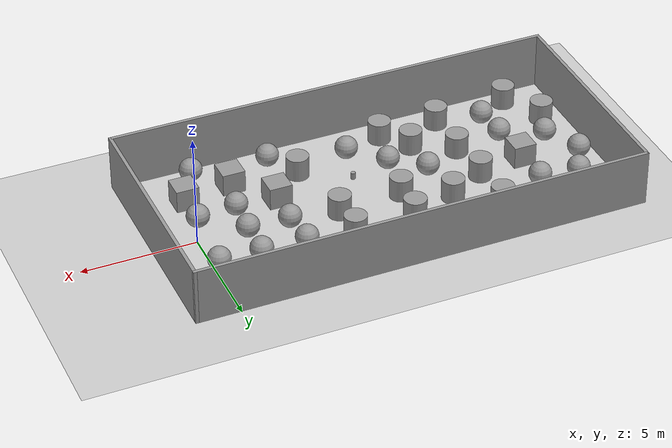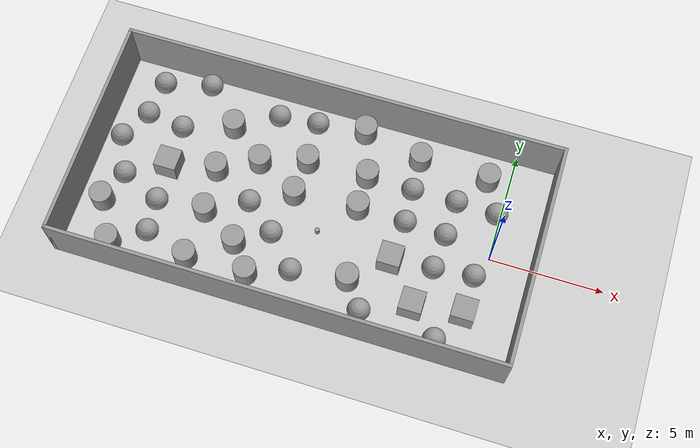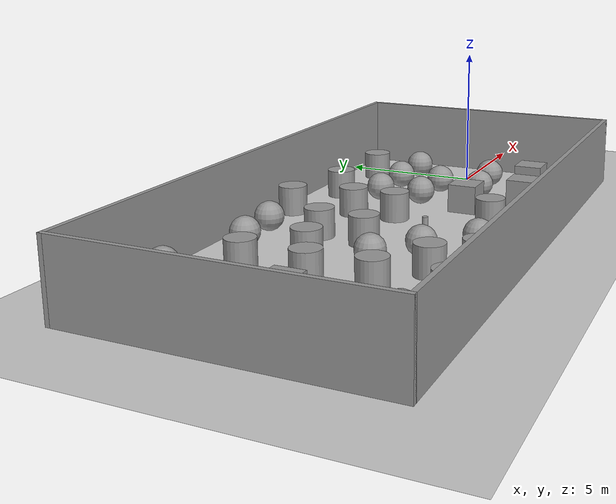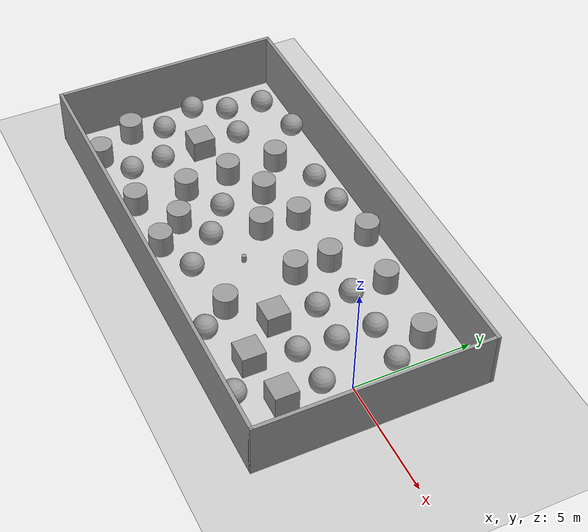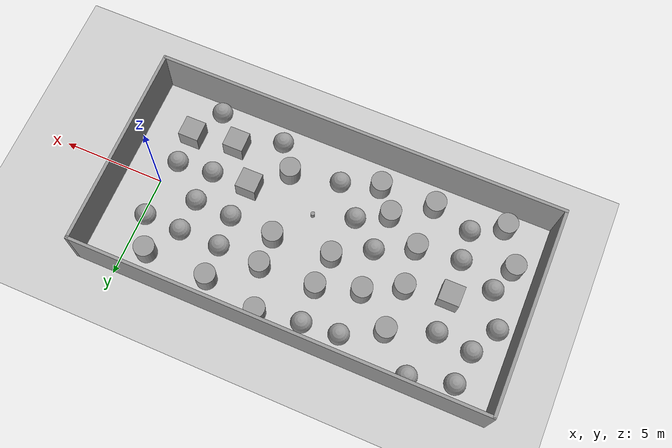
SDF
<sdf version="1.7">
 <world name="default">
  <light name="sun" type="directional">
   <pose>0 0 10 0 -0 0</pose>
   <diffuse>0.8 0.8 0.8 1</diffuse>
   <specular>0.2 0.2 0.2 1</specular>
   <attenuation>
    <range>1000</range>
    <constant>0.9</constant>
    <linear>0.01</linear>
    <quadratic>0.001</quadratic>
   </attenuation>
   <direction>-0.5 0.1 -0.9</direction>
   <spot><inner_angle>0</inner_angle><outer_angle>0</outer_angle><falloff>0</falloff></spot>
  </light>
  <model name="ground_plane">
   <static>1</static>
   <link name="link">
    <collision name="collision">
     <geometry><plane><normal>0 0 1</normal><size>100 100</size></plane></geometry>
     <surface><friction><ode><mu>100</mu><mu2>50</mu2></ode></friction></surface>
    </collision>
    <visual name="visual">
     <cast_shadows>0</cast_shadows>
     <geometry><plane><normal>0 0 1</normal><size>100 100</size></plane></geometry>
     <material>
      <script><uri>file://media/materials/scripts/gazebo.material</uri><name>Gazebo/Grey</name></script>
     </material>
    </visual>
   </link>
  </model>
  <gravity>0 0 -9.8</gravity>
  <magnetic_field>6e-06 2.3e-05 -4.2e-05</magnetic_field>
  <atmosphere type="adiabatic"/>
  <physics type="ode">
   <max_step_size>0.001</max_step_size>
   <real_time_factor>1</real_time_factor>
   <real_time_update_rate>1000</real_time_update_rate>
  </physics>
  <scene><ambient>0.4 0.4 0.4 1</ambient><background>0.7 0.7 0.7 1</background><shadows>1</shadows></scene>
  <audio><device>default</device></audio>
  <spherical_coordinates>
   <surface_model>EARTH_WGS84</surface_model>
   <latitude_deg>0</latitude_deg>
   <longitude_deg>0</longitude_deg>
   <elevation>0</elevation>
   <heading_deg>0</heading_deg>
  </spherical_coordinates>
  <model name="Untitled">
   <pose>-8.07686 -0.083661 0 0 -0 0</pose>
   <link name="Wall_10">
    <collision name="Wall_10_Collision">
     <geometry><box><size>20 0.15 2.5</size></box></geometry>
     <pose>0 0 1.25 0 -0 0</pose>
    </collision>
    <visual name="Wall_10_Visual">
     <pose>0 0 1.25 0 -0 0</pose>
     <geometry><box><size>20 0.15 2.5</size></box></geometry>
     <material>
      <script><uri>file://media/materials/scripts/gazebo.material</uri><name>Gazebo/Grey</name></script>
      <ambient>1 1 1 1</ambient>
     </material>
     <meta><layer>0</layer></meta>
    </visual>
    <pose>-0 4.925 0 0 -0 3.14159</pose>
   </link>
   <link name="Wall_7">
    <collision name="Wall_7_Collision">
     <geometry><box><size>10 0.15 2.5</size></box></geometry>
     <pose>0 0 1.25 0 -0 0</pose>
    </collision>
    <visual name="Wall_7_Visual">
     <pose>0 0 1.25 0 -0 0</pose>
     <geometry><box><size>10 0.15 2.5</size></box></geometry>
     <material>
      <script><uri>file://media/materials/scripts/gazebo.material</uri><name>Gazebo/Grey</name></script>
      <ambient>1 1 1 1</ambient>
     </material>
     <meta><layer>0</layer></meta>
    </visual>
    <pose>-9.925 -0 0 0 -0 -1.5708</pose>
   </link>
   <link name="Wall_8">
    <collision name="Wall_8_Collision">
     <geometry><box><size>20 0.15 2.5</size></box></geometry>
     <pose>0 0 1.25 0 -0 0</pose>
    </collision>
    <visual name="Wall_8_Visual">
     <pose>0 0 1.25 0 -0 0</pose>
     <geometry><box><size>20 0.15 2.5</size></box></geometry>
     <material>
      <script><uri>file://media/materials/scripts/gazebo.material</uri><name>Gazebo/Grey</name></script>
      <ambient>1 1 1 1</ambient>
     </material>
     <meta><layer>0</layer></meta>
    </visual>
    <pose>-0 -4.925 0 0 -0 0</pose>
   </link>
   <link name="Wall_9">
    <collision name="Wall_9_Collision">
     <geometry><box><size>10 0.15 2.5</size></box></geometry>
     <pose>0 0 1.25 0 -0 0</pose>
    </collision>
    <visual name="Wall_9_Visual">
     <pose>0 0 1.25 0 -0 0</pose>
     <geometry><box><size>10 0.15 2.5</size></box></geometry>
     <material>
      <script><uri>file://media/materials/scripts/gazebo.material</uri><name>Gazebo/Grey</name></script>
      <ambient>1 1 1 1</ambient>
     </material>
     <meta><layer>0</layer></meta>
    </visual>
    <pose>9.925 -0 0 0 -0 1.5708</pose>
   </link>
   <static>1</static>
  </model>
  <model name="unit_cylinder">
   <pose>-0.995491 3.50867 0.499994 -3e-06 -2e-06 0</pose>
   <link name="link">
    <inertial>
     <mass>1</mass>
     <inertia><ixx>0.145833</ixx><ixy>0</ixy><ixz>0</ixz><iyy>0.145833</iyy><iyz>0</iyz><izz>0.125</izz></inertia>
    </inertial>
    <collision name="collision">
     <geometry><cylinder><radius>0.5</radius><length>1</length></cylinder></geometry>
    </collision>
    <visual name="visual">
     <geometry><cylinder><radius>0.5</radius><length>1</length></cylinder></geometry>
     <material>
      <script><name>Gazebo/Grey</name><uri>file://media/materials/scripts/gazebo.material</uri></script>
     </material>
    </visual>
   </link>
  </model>
  <model name="unit_sphere">
   <pose>-2.0374 2.00215 0.5 0 -0 0</pose>
   <link name="link">
    <inertial>
     <mass>1</mass>
     <inertia><ixx>0.1</ixx><ixy>0</ixy><ixz>0</ixz><iyy>0.1</iyy><iyz>0</iyz><izz>0.1</izz></inertia>
    </inertial>
    <collision name="collision"><geometry><sphere><radius>0.5</radius></sphere></geometry></collision>
    <visual name="visual">
     <geometry><sphere><radius>0.5</radius></sphere></geometry>
     <material>
      <script><name>Gazebo/Grey</name><uri>file://media/materials/scripts/gazebo.material</uri></script>
     </material>
    </visual>
   </link>
  </model>
  <model name="unit_sphere_0">
   <pose>-0.222709 1.95057 0.5 0 -0 0</pose>
   <link name="link">
    <inertial>
     <mass>1</mass>
     <inertia><ixx>0.1</ixx><ixy>0</ixy><ixz>0</ixz><iyy>0.1</iyy><iyz>0</iyz><izz>0.1</izz></inertia>
    </inertial>
    <collision name="collision"><geometry><sphere><radius>0.5</radius></sphere></geometry></collision>
    <visual name="visual">
     <geometry><sphere><radius>0.5</radius></sphere></geometry>
     <material>
      <script><name>Gazebo/Grey</name><uri>file://media/materials/scripts/gazebo.material</uri></script>
     </material>
    </visual>
   </link>
  </model>
  <model name="unit_sphere_1">
   <pose>-2.08841 0.366388 0.5 0 -0 0</pose>
   <link name="link">
    <inertial>
     <mass>1</mass>
     <inertia><ixx>0.1</ixx><ixy>0</ixy><ixz>0</ixz><iyy>0.1</iyy><iyz>0</iyz><izz>0.1</izz></inertia>
    </inertial>
    <collision name="collision"><geometry><sphere><radius>0.5</radius></sphere></geometry></collision>
    <visual name="visual">
     <geometry><sphere><radius>0.5</radius></sphere></geometry>
     <material>
      <script><name>Gazebo/Grey</name><uri>file://media/materials/scripts/gazebo.material</uri></script>
     </material>
    </visual>
   </link>
  </model>
  <model name="unit_sphere_2">
   <pose>-0.451353 -1.08008 0.5 0 -0 0</pose>
   <link name="link">
    <inertial>
     <mass>1</mass>
     <inertia><ixx>0.1</ixx><ixy>0</ixy><ixz>0</ixz><iyy>0.1</iyy><iyz>0</iyz><izz>0.1</izz></inertia>
    </inertial>
    <collision name="collision"><geometry><sphere><radius>0.5</radius></sphere></geometry></collision>
    <visual name="visual">
     <geometry><sphere><radius>0.5</radius></sphere></geometry>
     <material>
      <script><name>Gazebo/Grey</name><uri>file://media/materials/scripts/gazebo.material</uri></script>
     </material>
    </visual>
   </link>
  </model>
  <model name="unit_sphere_3">
   <pose>-2.20209 -1.24084 0.5 0 -0 0</pose>
   <link name="link">
    <inertial>
     <mass>1</mass>
     <inertia><ixx>0.1</ixx><ixy>0</ixy><ixz>0</ixz><iyy>0.1</iyy><iyz>0</iyz><izz>0.1</izz></inertia>
    </inertial>
    <collision name="collision"><geometry><sphere><radius>0.5</radius></sphere></geometry></collision>
    <visual name="visual">
     <geometry><sphere><radius>0.5</radius></sphere></geometry>
     <material>
      <script><name>Gazebo/Grey</name><uri>file://media/materials/scripts/gazebo.material</uri></script>
     </material>
    </visual>
   </link>
  </model>
  <model name="unit_sphere_4">
   <pose>-3.91889 0.444341 0.5 0 -0 0</pose>
   <link name="link">
    <inertial>
     <mass>1</mass>
     <inertia><ixx>0.1</ixx><ixy>0</ixy><ixz>0</ixz><iyy>0.1</iyy><iyz>0</iyz><izz>0.1</izz></inertia>
    </inertial>
    <collision name="collision"><geometry><sphere><radius>0.5</radius></sphere></geometry></collision>
    <visual name="visual">
     <geometry><sphere><radius>0.5</radius></sphere></geometry>
     <material>
      <script><name>Gazebo/Grey</name><uri>file://media/materials/scripts/gazebo.material</uri></script>
     </material>
    </visual>
   </link>
  </model>
  <model name="unit_sphere_5">
   <pose>-4.02189 1.99881 0.5 0 -0 0</pose>
   <link name="link">
    <inertial>
     <mass>1</mass>
     <inertia><ixx>0.1</ixx><ixy>0</ixy><ixz>0</ixz><iyy>0.1</iyy><iyz>0</iyz><izz>0.1</izz></inertia>
    </inertial>
    <collision name="collision"><geometry><sphere><radius>0.5</radius></sphere></geometry></collision>
    <visual name="visual">
     <geometry><sphere><radius>0.5</radius></sphere></geometry>
     <material>
      <script><name>Gazebo/Grey</name><uri>file://media/materials/scripts/gazebo.material</uri></script>
     </material>
    </visual>
   </link>
  </model>
  <model name="unit_box">
   <pose>-4.06649 -1.35324 0.499995 -1e-05 -0 -0</pose>
   <link name="link">
    <inertial>
     <mass>1</mass>
     <inertia>
      <ixx>0.166667</ixx>
      <ixy>0</ixy>
      <ixz>0</ixz>
      <iyy>0.166667</iyy>
      <iyz>0</iyz>
      <izz>0.166667</izz>
     </inertia>
    </inertial>
    <collision name="collision"><geometry><box><size>1 1 1</size></box></geometry></collision>
    <visual name="visual">
     <geometry><box><size>1 1 1</size></box></geometry>
     <material>
      <script><name>Gazebo/Grey</name><uri>file://media/materials/scripts/gazebo.material</uri></script>
     </material>
    </visual>
   </link>
  </model>
  <model name="unit_box_0">
   <pose>-0.464439 -2.7308 0.499995 0 1e-05 0</pose>
   <link name="link">
    <inertial>
     <mass>1</mass>
     <inertia>
      <ixx>0.166667</ixx>
      <ixy>0</ixy>
      <ixz>0</ixz>
      <iyy>0.166667</iyy>
      <iyz>0</iyz>
      <izz>0.166667</izz>
     </inertia>
    </inertial>
    <collision name="collision"><geometry><box><size>1 1 1</size></box></geometry></collision>
    <visual name="visual">
     <geometry><box><size>1 1 1</size></box></geometry>
     <material>
      <script><name>Gazebo/Grey</name><uri>file://media/materials/scripts/gazebo.material</uri></script>
     </material>
    </visual>
   </link>
  </model>
  <model name="unit_box_1">
   <pose>-2.63966 -3.05397 0.499995 -1e-05 -0 -0</pose>
   <link name="link">
    <inertial>
     <mass>1</mass>
     <inertia>
      <ixx>0.166667</ixx>
      <ixy>0</ixy>
      <ixz>0</ixz>
      <iyy>0.166667</iyy>
      <iyz>0</iyz>
      <izz>0.166667</izz>
     </inertia>
    </inertial>
    <collision name="collision"><geometry><box><size>1 1 1</size></box></geometry></collision>
    <visual name="visual">
     <geometry><box><size>1 1 1</size></box></geometry>
     <material>
      <script><name>Gazebo/Grey</name><uri>file://media/materials/scripts/gazebo.material</uri></script>
     </material>
    </visual>
   </link>
  </model>
  <model name="unit_cylinder_0">
   <pose>-5.56787 -2.73643 0.499994 -4e-06 -4e-06 -0</pose>
   <link name="link">
    <inertial>
     <mass>1</mass>
     <inertia><ixx>0.145833</ixx><ixy>0</ixy><ixz>0</ixz><iyy>0.145833</iyy><iyz>0</iyz><izz>0.125</izz></inertia>
    </inertial>
    <collision name="collision">
     <geometry><cylinder><radius>0.5</radius><length>1</length></cylinder></geometry>
    </collision>
    <visual name="visual">
     <geometry><cylinder><radius>0.5</radius><length>1</length></cylinder></geometry>
     <material>
      <script><name>Gazebo/Grey</name><uri>file://media/materials/scripts/gazebo.material</uri></script>
     </material>
    </visual>
   </link>
  </model>
  <model name="unit_cylinder_1">
   <pose>-6.08981 0.542812 0.499992 -3e-06 -3e-06 0</pose>
   <link name="link">
    <inertial>
     <mass>1</mass>
     <inertia><ixx>0.145833</ixx><ixy>0</ixy><ixz>0</ixz><iyy>0.145833</iyy><iyz>0</iyz><izz>0.125</izz></inertia>
    </inertial>
    <collision name="collision">
     <geometry><cylinder><radius>0.1</radius><length>0.3</length></cylinder></geometry>
    </collision>
    <visual name="visual">
     <geometry><cylinder><radius>0.5</radius><length>1</length></cylinder></geometry>
     <material>
      <script><name>Gazebo/Grey</name><uri>file://media/materials/scripts/gazebo.material</uri></script>
     </material>
    </visual>
   </link>
  </model>
  <model name="unit_cylinder_2">
   <pose>-7.41925 -1.11078 0.499998 3e-06 4e-06 -0</pose>
   <link name="link">
    <inertial>
     <mass>1</mass>
     <inertia><ixx>0.145833</ixx><ixy>0</ixy><ixz>0</ixz><iyy>0.145833</iyy><iyz>0</iyz><izz>0.125</izz></inertia>
    </inertial>
    <collision name="collision">
     <geometry><cylinder><radius>0.1</radius><length>0.3</length></cylinder></geometry>
    </collision>
    <visual name="visual">
     <geometry><cylinder><radius>0.1</radius><length>0.3</length></cylinder></geometry>
     <material>
      <script><name>Gazebo/Grey</name><uri>file://media/materials/scripts/gazebo.material</uri></script>
     </material>
    </visual>
   </link>
  </model>
  <model name="unit_cylinder_3">
   <pose>-6.12398 2.10166 0.499992 -3e-06 -4e-06 -0</pose>
   <link name="link">
    <inertial>
     <mass>1</mass>
     <inertia><ixx>0.145833</ixx><ixy>0</ixy><ixz>0</ixz><iyy>0.145833</iyy><iyz>0</iyz><izz>0.125</izz></inertia>
    </inertial>
    <collision name="collision">
     <geometry><cylinder><radius>0.5</radius><length>1</length></cylinder></geometry>
    </collision>
    <visual name="visual">
     <geometry><cylinder><radius>0.5</radius><length>1</length></cylinder></geometry>
     <material>
      <script><name>Gazebo/Grey</name><uri>file://media/materials/scripts/gazebo.material</uri></script>
     </material>
    </visual>
   </link>
  </model>
  <model name="unit_cylinder_4">
   <pose>-4.10671 3.59178 0.499992 -3e-06 -4e-06 -0</pose>
   <link name="link">
    <inertial>
     <mass>1</mass>
     <inertia><ixx>0.145833</ixx><ixy>0</ixy><ixz>0</ixz><iyy>0.145833</iyy><iyz>0</iyz><izz>0.125</izz></inertia>
    </inertial>
    <collision name="collision">
     <geometry><cylinder><radius>0.5</radius><length>1</length></cylinder></geometry>
    </collision>
    <visual name="visual">
     <geometry><cylinder><radius>0.5</radius><length>1</length></cylinder></geometry>
     <material>
      <script><name>Gazebo/Grey</name><uri>file://media/materials/scripts/gazebo.material</uri></script>
     </material>
    </visual>
   </link>
  </model>
  <model name="unit_cylinder_5">
   <pose>-6.80449 4.15952 0.499996 3e-06 3e-06 0</pose>
   <link name="link">
    <inertial>
     <mass>1</mass>
     <inertia><ixx>0.145833</ixx><ixy>0</ixy><ixz>0</ixz><iyy>0.145833</iyy><iyz>0</iyz><izz>0.125</izz></inertia>
    </inertial>
    <collision name="collision">
     <geometry><cylinder><radius>0.5</radius><length>1</length></cylinder></geometry>
    </collision>
    <visual name="visual">
     <geometry><cylinder><radius>0.5</radius><length>1</length></cylinder></geometry>
     <material>
      <script><name>Gazebo/Grey</name><uri>file://media/materials/scripts/gazebo.material</uri></script>
     </material>
    </visual>
   </link>
  </model>
  <model name="unit_cylinder_6">
   <pose>-8.84267 2.02153 0.499994 -4e-06 -3e-06 -0</pose>
   <link name="link">
    <inertial>
     <mass>1</mass>
     <inertia><ixx>0.145833</ixx><ixy>0</ixy><ixz>0</ixz><iyy>0.145833</iyy><iyz>0</iyz><izz>0.125</izz></inertia>
    </inertial>
    <collision name="collision">
     <geometry><cylinder><radius>0.5</radius><length>1</length></cylinder></geometry>
    </collision>
    <visual name="visual">
     <geometry><cylinder><radius>0.5</radius><length>1</length></cylinder></geometry>
     <material>
      <script><name>Gazebo/Grey</name><uri>file://media/materials/scripts/gazebo.material</uri></script>
     </material>
    </visual>
   </link>
  </model>
  <model name="unit_cylinder_7">
   <pose>-8.95527 0.366359 0.499994 -4e-06 -3e-06 -0</pose>
   <link name="link">
    <inertial>
     <mass>1</mass>
     <inertia><ixx>0.145833</ixx><ixy>0</ixy><ixz>0</ixz><iyy>0.145833</iyy><iyz>0</iyz><izz>0.125</izz></inertia>
    </inertial>
    <collision name="collision">
     <geometry><cylinder><radius>0.5</radius><length>1</length></cylinder></geometry>
    </collision>
    <visual name="visual">
     <geometry><cylinder><radius>0.5</radius><length>1</length></cylinder></geometry>
     <material>
      <script><name>Gazebo/Grey</name><uri>file://media/materials/scripts/gazebo.material</uri></script>
     </material>
    </visual>
   </link>
  </model>
  <model name="unit_cylinder_8">
   <pose>-10.8753 1.38303 0.499998 3e-06 -2e-06 0</pose>
   <link name="link">
    <inertial>
     <mass>1</mass>
     <inertia><ixx>0.145833</ixx><ixy>0</ixy><ixz>0</ixz><iyy>0.145833</iyy><iyz>0</iyz><izz>0.125</izz></inertia>
    </inertial>
    <collision name="collision">
     <geometry><cylinder><radius>0.5</radius><length>1</length></cylinder></geometry>
    </collision>
    <visual name="visual">
     <geometry><cylinder><radius>0.5</radius><length>1</length></cylinder></geometry>
     <material>
      <script><name>Gazebo/Grey</name><uri>file://media/materials/scripts/gazebo.material</uri></script>
     </material>
    </visual>
   </link>
  </model>
  <model name="unit_sphere_6">
   <pose>-10.7011 3.68501 0.5 0 -0 0</pose>
   <link name="link">
    <inertial>
     <mass>1</mass>
     <inertia><ixx>0.1</ixx><ixy>0</ixy><ixz>0</ixz><iyy>0.1</iyy><iyz>0</iyz><izz>0.1</izz></inertia>
    </inertial>
    <collision name="collision"><geometry><sphere><radius>0.5</radius></sphere></geometry></collision>
    <visual name="visual">
     <geometry><sphere><radius>0.5</radius></sphere></geometry>
     <material>
      <script><name>Gazebo/Grey</name><uri>file://media/materials/scripts/gazebo.material</uri></script>
     </material>
    </visual>
   </link>
  </model>
  <model name="unit_sphere_7">
   <pose>-8.95017 3.84361 0.5 0 -0 0</pose>
   <link name="link">
    <inertial>
     <mass>1</mass>
     <inertia><ixx>0.1</ixx><ixy>0</ixy><ixz>0</ixz><iyy>0.1</iyy><iyz>0</iyz><izz>0.1</izz></inertia>
    </inertial>
    <collision name="collision"><geometry><sphere><radius>0.5</radius></sphere></geometry></collision>
    <visual name="visual">
     <geometry><sphere><radius>0.5</radius></sphere></geometry>
     <material>
      <script><name>Gazebo/Grey</name><uri>file://media/materials/scripts/gazebo.material</uri></script>
     </material>
    </visual>
   </link>
  </model>
  <model name="unit_sphere_8">
   <pose>-10.6709 -0.643553 0.5 0 -0 0</pose>
   <link name="link">
    <inertial>
     <mass>1</mass>
     <inertia><ixx>0.1</ixx><ixy>0</ixy><ixz>0</ixz><iyy>0.1</iyy><iyz>0</iyz><izz>0.1</izz></inertia>
    </inertial>
    <collision name="collision"><geometry><sphere><radius>0.5</radius></sphere></geometry></collision>
    <visual name="visual">
     <geometry><sphere><radius>0.5</radius></sphere></geometry>
     <material>
      <script><name>Gazebo/Grey</name><uri>file://media/materials/scripts/gazebo.material</uri></script>
     </material>
    </visual>
   </link>
  </model>
  <model name="unit_sphere_9">
   <pose>-9.30923 -1.74058 0.5 0 -0 0</pose>
   <link name="link">
    <inertial>
     <mass>1</mass>
     <inertia><ixx>0.1</ixx><ixy>0</ixy><ixz>0</ixz><iyy>0.1</iyy><iyz>0</iyz><izz>0.1</izz></inertia>
    </inertial>
    <collision name="collision"><geometry><sphere><radius>0.5</radius></sphere></geometry></collision>
    <visual name="visual">
     <geometry><sphere><radius>0.5</radius></sphere></geometry>
     <material>
      <script><name>Gazebo/Grey</name><uri>file://media/materials/scripts/gazebo.material</uri></script>
     </material>
    </visual>
   </link>
  </model>
  <model name="unit_sphere_10">
   <pose>-7.98495 -3.13481 0.5 0 -0 0</pose>
   <link name="link">
    <inertial>
     <mass>1</mass>
     <inertia><ixx>0.1</ixx><ixy>0</ixy><ixz>0</ixz><iyy>0.1</iyy><iyz>0</iyz><izz>0.1</izz></inertia>
    </inertial>
    <collision name="collision"><geometry><sphere><radius>0.5</radius></sphere></geometry></collision>
    <visual name="visual">
     <geometry><sphere><radius>0.5</radius></sphere></geometry>
     <material>
      <script><name>Gazebo/Grey</name><uri>file://media/materials/scripts/gazebo.material</uri></script>
     </material>
    </visual>
   </link>
  </model>
  <model name="unit_sphere_11">
   <pose>-4.68832 -3.97225 0.5 0 -0 0</pose>
   <link name="link">
    <inertial>
     <mass>1</mass>
     <inertia><ixx>0.1</ixx><ixy>0</ixy><ixz>0</ixz><iyy>0.1</iyy><iyz>0</iyz><izz>0.1</izz></inertia>
    </inertial>
    <collision name="collision"><geometry><sphere><radius>0.5</radius></sphere></geometry></collision>
    <visual name="visual">
     <geometry><sphere><radius>0.5</radius></sphere></geometry>
     <material>
      <script><name>Gazebo/Grey</name><uri>file://media/materials/scripts/gazebo.material</uri></script>
     </material>
    </visual>
   </link>
  </model>
  <model name="unit_cylinder_9">
   <pose>-12.532 2.68132 0.499993 -3e-06 2e-06 0</pose>
   <link name="link">
    <inertial>
     <mass>1</mass>
     <inertia><ixx>0.145833</ixx><ixy>0</ixy><ixz>0</ixz><iyy>0.145833</iyy><iyz>0</iyz><izz>0.125</izz></inertia>
    </inertial>
    <collision name="collision">
     <geometry><cylinder><radius>0.5</radius><length>1</length></cylinder></geometry>
    </collision>
    <visual name="visual">
     <geometry><cylinder><radius>0.5</radius><length>1</length></cylinder></geometry>
     <material>
      <script><name>Gazebo/Grey</name><uri>file://media/materials/scripts/gazebo.material</uri></script>
     </material>
    </visual>
   </link>
  </model>
  <model name="unit_cylinder_10">
   <pose>-12.5883 0.468998 0.499998 3e-06 -2e-06 0</pose>
   <link name="link">
    <inertial>
     <mass>1</mass>
     <inertia><ixx>0.145833</ixx><ixy>0</ixy><ixz>0</ixz><iyy>0.145833</iyy><iyz>0</iyz><izz>0.125</izz></inertia>
    </inertial>
    <collision name="collision">
     <geometry><cylinder><radius>0.5</radius><length>1</length></cylinder></geometry>
    </collision>
    <visual name="visual">
     <geometry><cylinder><radius>0.5</radius><length>1</length></cylinder></geometry>
     <material>
      <script><name>Gazebo/Grey</name><uri>file://media/materials/scripts/gazebo.material</uri></script>
     </material>
    </visual>
   </link>
  </model>
  <model name="unit_cylinder_11">
   <pose>-12.4329 -1.53382 0.499993 -3e-06 2e-06 0</pose>
   <link name="link">
    <inertial>
     <mass>1</mass>
     <inertia><ixx>0.145833</ixx><ixy>0</ixy><ixz>0</ixz><iyy>0.145833</iyy><iyz>0</iyz><izz>0.125</izz></inertia>
    </inertial>
    <collision name="collision">
     <geometry><cylinder><radius>0.5</radius><length>1</length></cylinder></geometry>
    </collision>
    <visual name="visual">
     <geometry><cylinder><radius>0.5</radius><length>1</length></cylinder></geometry>
     <material>
      <script><name>Gazebo/Grey</name><uri>file://media/materials/scripts/gazebo.material</uri></script>
     </material>
    </visual>
   </link>
  </model>
  <model name="unit_cylinder_12">
   <pose>-10.7357 -2.56424 0.499993 -3e-06 3e-06 0</pose>
   <link name="link">
    <inertial>
     <mass>1</mass>
     <inertia><ixx>0.145833</ixx><ixy>0</ixy><ixz>0</ixz><iyy>0.145833</iyy><iyz>0</iyz><izz>0.125</izz></inertia>
    </inertial>
    <collision name="collision">
     <geometry><cylinder><radius>0.5</radius><length>1</length></cylinder></geometry>
    </collision>
    <visual name="visual">
     <geometry><cylinder><radius>0.5</radius><length>1</length></cylinder></geometry>
     <material>
      <script><name>Gazebo/Grey</name><uri>file://media/materials/scripts/gazebo.material</uri></script>
     </material>
    </visual>
   </link>
  </model>
  <model name="unit_cylinder_13">
   <pose>-9.80661 -3.75752 0.499992 -3e-06 3e-06 0</pose>
   <link name="link">
    <inertial>
     <mass>1</mass>
     <inertia><ixx>0.145833</ixx><ixy>0</ixy><ixz>0</ixz><iyy>0.145833</iyy><iyz>0</iyz><izz>0.125</izz></inertia>
    </inertial>
    <collision name="collision">
     <geometry><cylinder><radius>0.5</radius><length>1</length></cylinder></geometry>
    </collision>
    <visual name="visual">
     <geometry><cylinder><radius>0.5</radius><length>1</length></cylinder></geometry>
     <material>
      <script><name>Gazebo/Grey</name><uri>file://media/materials/scripts/gazebo.material</uri></script>
     </material>
    </visual>
   </link>
  </model>
  <model name="unit_cylinder_14">
   <pose>-12.5041 -3.81303 0.499998 3e-06 -3e-06 0</pose>
   <link name="link">
    <inertial>
     <mass>1</mass>
     <inertia><ixx>0.145833</ixx><ixy>0</ixy><ixz>0</ixz><iyy>0.145833</iyy><iyz>0</iyz><izz>0.125</izz></inertia>
    </inertial>
    <collision name="collision">
     <geometry><cylinder><radius>0.5</radius><length>1</length></cylinder></geometry>
    </collision>
    <visual name="visual">
     <geometry><cylinder><radius>0.5</radius><length>1</length></cylinder></geometry>
     <material>
      <script><name>Gazebo/Grey</name><uri>file://media/materials/scripts/gazebo.material</uri></script>
     </material>
    </visual>
   </link>
  </model>
  <model name="unit_sphere_12">
   <pose>-14.1417 4.25647 0.5 0.048609 -2e-06 -0</pose>
   <link name="link">
    <inertial>
     <mass>1</mass>
     <inertia><ixx>0.1</ixx><ixy>0</ixy><ixz>0</ixz><iyy>0.1</iyy><iyz>0</iyz><izz>0.1</izz></inertia>
    </inertial>
    <collision name="collision"><geometry><sphere><radius>0.5</radius></sphere></geometry></collision>
    <visual name="visual">
     <geometry><sphere><radius>0.5</radius></sphere></geometry>
     <material>
      <script><name>Gazebo/Grey</name><uri>file://media/materials/scripts/gazebo.material</uri></script>
     </material>
    </visual>
   </link>
  </model>
  <model name="unit_sphere_13">
   <pose>-14.6966 1.87838 0.5 0 -0 0</pose>
   <link name="link">
    <inertial>
     <mass>1</mass>
     <inertia><ixx>0.1</ixx><ixy>0</ixy><ixz>0</ixz><iyy>0.1</iyy><iyz>0</iyz><izz>0.1</izz></inertia>
    </inertial>
    <collision name="collision"><geometry><sphere><radius>0.5</radius></sphere></geometry></collision>
    <visual name="visual">
     <geometry><sphere><radius>0.5</radius></sphere></geometry>
     <material>
      <script><name>Gazebo/Grey</name><uri>file://media/materials/scripts/gazebo.material</uri></script>
     </material>
    </visual>
   </link>
  </model>
  <model name="unit_box_2">
   <pose>-14.6705 0.057885 0.499995 -1e-05 -0 -0</pose>
   <link name="link">
    <inertial>
     <mass>1</mass>
     <inertia>
      <ixx>0.166667</ixx>
      <ixy>0</ixy>
      <ixz>0</ixz>
      <iyy>0.166667</iyy>
      <iyz>0</iyz>
      <izz>0.166667</izz>
     </inertia>
    </inertial>
    <collision name="collision"><geometry><box><size>1 1 1</size></box></geometry></collision>
    <visual name="visual">
     <geometry><box><size>1 1 1</size></box></geometry>
     <material>
      <script><name>Gazebo/Grey</name><uri>file://media/materials/scripts/gazebo.material</uri></script>
     </material>
    </visual>
   </link>
  </model>
  <model name="unit_sphere_14">
   <pose>-14.5602 -1.74838 0.5 0 -0 0</pose>
   <link name="link">
    <inertial>
     <mass>1</mass>
     <inertia><ixx>0.1</ixx><ixy>0</ixy><ixz>0</ixz><iyy>0.1</iyy><iyz>0</iyz><izz>0.1</izz></inertia>
    </inertial>
    <collision name="collision"><geometry><sphere><radius>0.5</radius></sphere></geometry></collision>
    <visual name="visual">
     <geometry><sphere><radius>0.5</radius></sphere></geometry>
     <material>
      <script><name>Gazebo/Grey</name><uri>file://media/materials/scripts/gazebo.material</uri></script>
     </material>
    </visual>
   </link>
  </model>
  <model name="unit_sphere_15">
   <pose>-14.4372 -3.24039 0.5 0 -0 0</pose>
   <link name="link">
    <inertial>
     <mass>1</mass>
     <inertia><ixx>0.1</ixx><ixy>0</ixy><ixz>0</ixz><iyy>0.1</iyy><iyz>0</iyz><izz>0.1</izz></inertia>
    </inertial>
    <collision name="collision"><geometry><sphere><radius>0.5</radius></sphere></geometry></collision>
    <visual name="visual">
     <geometry><sphere><radius>0.5</radius></sphere></geometry>
     <material>
      <script><name>Gazebo/Grey</name><uri>file://media/materials/scripts/gazebo.material</uri></script>
     </material>
    </visual>
   </link>
  </model>
  <model name="unit_cylinder_15">
   <pose>-15.9121 -4.10818 0.499992 -3e-06 4e-06 0</pose>
   <link name="link">
    <inertial>
     <mass>1</mass>
     <inertia><ixx>0.145833</ixx><ixy>0</ixy><ixz>0</ixz><iyy>0.145833</iyy><iyz>0</iyz><izz>0.125</izz></inertia>
    </inertial>
    <collision name="collision">
     <geometry><cylinder><radius>0.5</radius><length>1</length></cylinder></geometry>
    </collision>
    <visual name="visual">
     <geometry><cylinder><radius>0.5</radius><length>1</length></cylinder></geometry>
     <material>
      <script><name>Gazebo/Grey</name><uri>file://media/materials/scripts/gazebo.material</uri></script>
     </material>
    </visual>
   </link>
  </model>
  <model name="unit_cylinder_16">
   <pose>-16.8862 -2.33969 0.499998 3e-06 -4e-06 0</pose>
   <link name="link">
    <inertial>
     <mass>1</mass>
     <inertia><ixx>0.145833</ixx><ixy>0</ixy><ixz>0</ixz><iyy>0.145833</iyy><iyz>0</iyz><izz>0.125</izz></inertia>
    </inertial>
    <collision name="collision">
     <geometry><cylinder><radius>0.5</radius><length>1</length></cylinder></geometry>
    </collision>
    <visual name="visual">
     <geometry><cylinder><radius>0.5</radius><length>1</length></cylinder></geometry>
     <material>
      <script><name>Gazebo/Grey</name><uri>file://media/materials/scripts/gazebo.material</uri></script>
     </material>
    </visual>
   </link>
  </model>
  <model name="unit_sphere_16">
   <pose>-16.3601 -0.963907 0.5 0 -0 0</pose>
   <link name="link">
    <inertial>
     <mass>1</mass>
     <inertia><ixx>0.1</ixx><ixy>0</ixy><ixz>0</ixz><iyy>0.1</iyy><iyz>0</iyz><izz>0.1</izz></inertia>
    </inertial>
    <collision name="collision"><geometry><sphere><radius>0.5</radius></sphere></geometry></collision>
    <visual name="visual">
     <geometry><sphere><radius>0.5</radius></sphere></geometry>
     <material>
      <script><name>Gazebo/Grey</name><uri>file://media/materials/scripts/gazebo.material</uri></script>
     </material>
    </visual>
   </link>
  </model>
  <model name="unit_sphere_17">
   <pose>-17.1446 0.709244 0.5 0 -0 0</pose>
   <link name="link">
    <inertial>
     <mass>1</mass>
     <inertia><ixx>0.1</ixx><ixy>0</ixy><ixz>0</ixz><iyy>0.1</iyy><iyz>0</iyz><izz>0.1</izz></inertia>
    </inertial>
    <collision name="collision"><geometry><sphere><radius>0.5</radius></sphere></geometry></collision>
    <visual name="visual">
     <geometry><sphere><radius>0.5</radius></sphere></geometry>
     <material>
      <script><name>Gazebo/Grey</name><uri>file://media/materials/scripts/gazebo.material</uri></script>
     </material>
    </visual>
   </link>
  </model>
  <model name="unit_sphere_18">
   <pose>-16.4066 2.10207 0.5 0 -0 0</pose>
   <link name="link">
    <inertial>
     <mass>1</mass>
     <inertia><ixx>0.1</ixx><ixy>0</ixy><ixz>0</ixz><iyy>0.1</iyy><iyz>0</iyz><izz>0.1</izz></inertia>
    </inertial>
    <collision name="collision"><geometry><sphere><radius>0.5</radius></sphere></geometry></collision>
    <visual name="visual">
     <geometry><sphere><radius>0.5</radius></sphere></geometry>
     <material>
      <script><name>Gazebo/Grey</name><uri>file://media/materials/scripts/gazebo.material</uri></script>
     </material>
    </visual>
   </link>
  </model>
  <model name="unit_sphere_19">
   <pose>-16.2094 3.7443 0.5 0 -0 0</pose>
   <link name="link">
    <inertial>
     <mass>1</mass>
     <inertia><ixx>0.1</ixx><ixy>0</ixy><ixz>0</ixz><iyy>0.1</iyy><iyz>0</iyz><izz>0.1</izz></inertia>
    </inertial>
    <collision name="collision"><geometry><sphere><radius>0.5</radius></sphere></geometry></collision>
    <visual name="visual">
     <geometry><sphere><radius>0.5</radius></sphere></geometry>
     <material>
      <script><name>Gazebo/Grey</name><uri>file://media/materials/scripts/gazebo.material</uri></script>
     </material>
    </visual>
   </link>
  </model>
  <model name="unit_sphere_20">
   <pose>-1.33324 -4.26811 0.5 0 -0 0</pose>
   <link name="link">
    <inertial>
     <mass>1</mass>
     <inertia><ixx>0.1</ixx><ixy>0</ixy><ixz>0</ixz><iyy>0.1</iyy><iyz>0</iyz><izz>0.1</izz></inertia>
    </inertial>
    <collision name="collision"><geometry><sphere><radius>0.5</radius></sphere></geometry></collision>
    <visual name="visual">
     <geometry><sphere><radius>0.5</radius></sphere></geometry>
     <material>
      <script><name>Gazebo/Grey</name><uri>file://media/materials/scripts/gazebo.material</uri></script>
     </material>
    </visual>
   </link>
  </model>
 </world>
</sdf>
